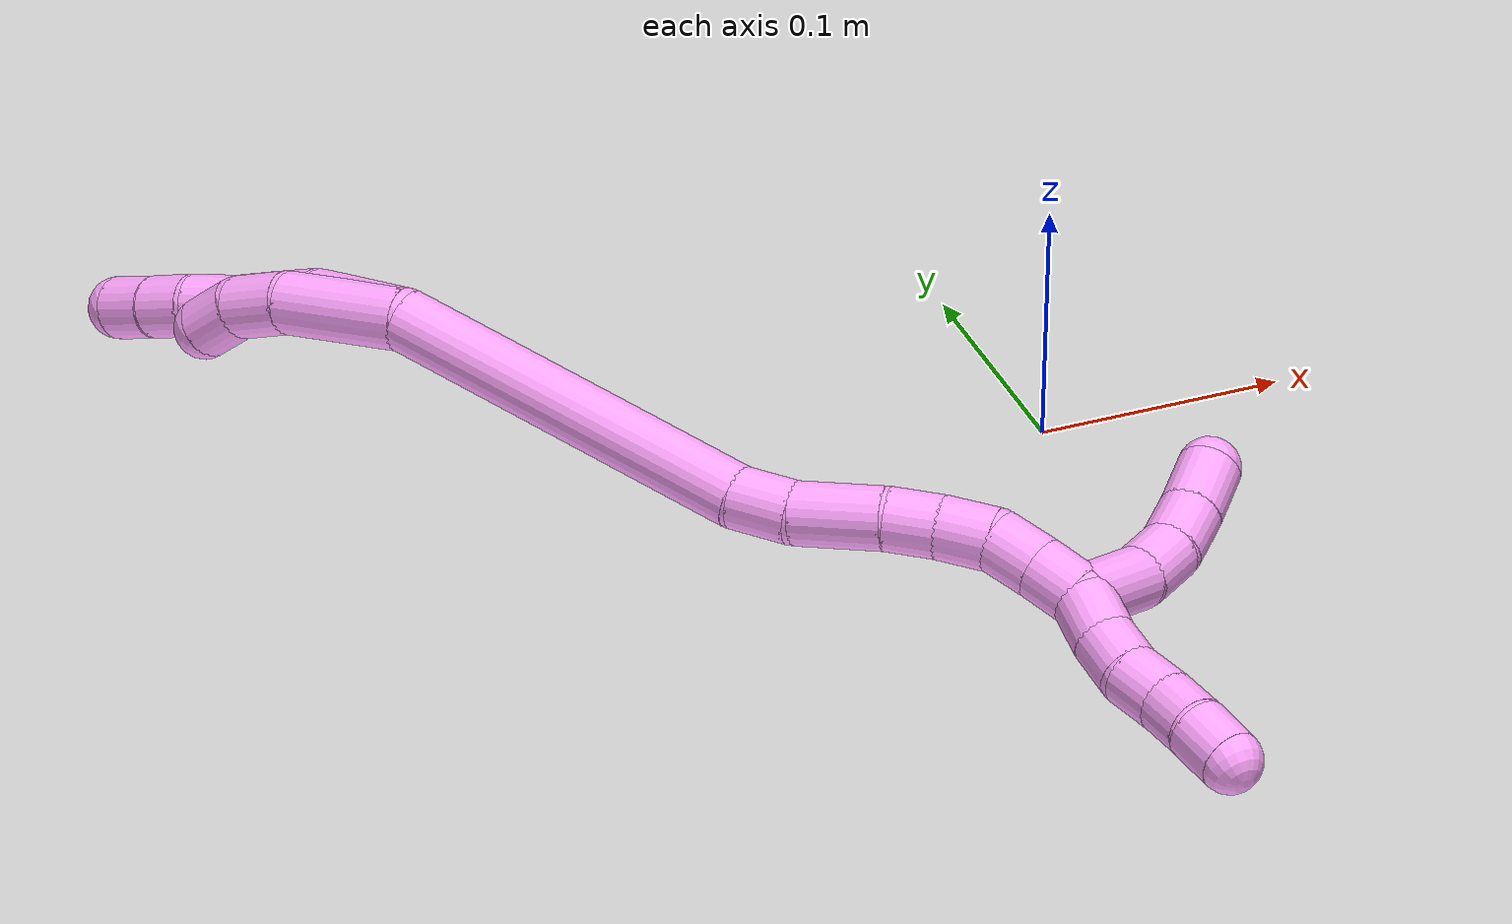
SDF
<sdf version="1.7">
 <world name="default">
  <model name="photoneo_s_sensor">
   <static>1</static>
   <pose>0 0 2 1.57079 1.57079 3.14159</pose>
   <link name="link">
    <inertial><mass>0.1</mass></inertial>
    <sensor name="sensor" type="depth">
     <update_rate>30</update_rate>
     <camera>
      <horizontal_fov>1.22</horizontal_fov>
      <image><width>1920</width><height>1200</height><format>B8G8R8</format></image>
      <clip><near>0.1</near><far>4</far></clip>
      <depth_camera><output>points</output></depth_camera>
     </camera>
     <plugin name="camera_plugin" filename="libgazebo_ros_depth_camera.so">
      <baseline>0.2</baseline>
      <alwaysOn>1</alwaysOn>
      <updateRate>0.0</updateRate>
      <cameraName>camera_ir</cameraName>
      <imageTopicName>/camera/color/image_raw</imageTopicName>
      <cameraInfoTopicName>/camera/color/camera_info</cameraInfoTopicName>
      <depthImageTopicName>/camera/depth/image_raw</depthImageTopicName>
      <depthImageCameraInfoTopicName>/camera/depth/camera_info</depthImageCameraInfoTopicName>
      <pointCloudTopicName>/camera/depth/points</pointCloudTopicName>
      <frameName>fr_optical</frameName>
      <pointCloudCutoff>0.1</pointCloudCutoff>
      <pointCloudCutoffMax>2.0</pointCloudCutoffMax>
      <distortionK1>0</distortionK1>
      <distortionK2>0</distortionK2>
      <distortionK3>0</distortionK3>
      <distortionT1>0</distortionT1>
      <distortionT2>0</distortionT2>
      <CxPrime>0</CxPrime>
      <Cx>0</Cx>
      <Cy>0</Cy>
      <focalLength>0</focalLength>
      <hackBaseline>0</hackBaseline>
     </plugin>
    </sensor>
   </link>
  </model>
  <model name="bin">
   <static>1</static>
   <link name="bottom">
    <collision name="collision-bottom">
     <pose>0 0 -0.01 0 -0 0</pose>
     <geometry><box><size>0.8 0.6 0.02</size></box></geometry>
     <surface>
      <friction><ode><mu>100</mu><mu2>100</mu2></ode></friction>
      <contact><collide_bitmask>65535</collide_bitmask></contact>
     </surface>
    </collision>
   </link>
   <link name="west_wall">
    <collision name="collision-west_wall">
     <pose>-0.41 0 0.1 0 -0 0</pose>
     <geometry><box><size>0.02 0.6 0.2</size></box></geometry>
     <surface>
      <friction><ode><mu>100</mu><mu2>100</mu2></ode></friction>
      <contact><collide_bitmask>65535</collide_bitmask></contact>
     </surface>
    </collision>
   </link>
   <link name="east_wall">
    <collision name="collision-east_wall">
     <pose>0.41 0 0.1 0 -0 0</pose>
     <geometry><box><size>0.02 0.6 0.2</size></box></geometry>
     <surface>
      <friction><ode><mu>100</mu><mu2>100</mu2></ode></friction>
      <contact><collide_bitmask>65535</collide_bitmask></contact>
     </surface>
    </collision>
   </link>
   <link name="south_wall">
    <collision name="collision-south_wall">
     <pose>0 -0.31 0.1 0 -0 0</pose>
     <geometry><box><size>0.8 0.02 0.2</size></box></geometry>
     <surface>
      <friction><ode><mu>100</mu><mu2>100</mu2></ode></friction>
      <contact><collide_bitmask>65535</collide_bitmask></contact>
     </surface>
    </collision>
   </link>
   <link name="north_wall">
    <collision name="collision-north_wall">
     <pose>0 0.31 0.1 0 -0 0</pose>
     <geometry><box><size>0.8 0.02 0.2</size></box></geometry>
     <surface>
      <friction><ode><mu>100</mu><mu2>100</mu2></ode></friction>
      <contact><collide_bitmask>65535</collide_bitmask></contact>
     </surface>
    </collision>
   </link>
  </model>
  <model name="4">
   <static>0</static>
   <link name="4">
    <collision name="collision-cylinder-e_1_2_8">
     <pose>-0.003338 0.015507 0.018531 -0.696774 -0.137272 0.049925</pose>
     <geometry><cylinder><radius>0.0125</radius><length>0.048786</length></cylinder></geometry>
     <surface>
      <friction><ode><mu>1.16</mu><mu2>1.16</mu2><slip1>0</slip1><slip2>0</slip2></ode></friction>
      <contact><ode><kp>1e+06</kp><kd>1</kd><max_vel>0</max_vel><min_depth>0.001</min_depth></ode></contact>
     </surface>
    </collision>
    <visual name="visual-cylinder-e_1_2_8">
     <pose>-0.003338 0.015507 0.018531 -0.696774 -0.137272 0.049925</pose>
     <geometry><cylinder><radius>0.0125</radius><length>0.048786</length></cylinder></geometry>
     <material><ambient>1 0.65098 0.996078 1</ambient></material>
    </visual>
    <collision name="collision-cylinder-e_2_8_9">
     <pose>-0.009121 0.038731 0.042989 -0.915909 -0.246195 0.121816</pose>
     <geometry><cylinder><radius>0.0125</radius><length>0.020065</length></cylinder></geometry>
     <surface>
      <friction><ode><mu>1.16</mu><mu2>1.16</mu2><slip1>0</slip1><slip2>0</slip2></ode></friction>
      <contact><ode><kp>1e+06</kp><kd>1</kd><max_vel>0</max_vel><min_depth>0.001</min_depth></ode></contact>
     </surface>
    </collision>
    <visual name="visual-cylinder-e_2_8_9">
     <pose>-0.009121 0.038731 0.042989 -0.915909 -0.246195 0.121816</pose>
     <geometry><cylinder><radius>0.0125</radius><length>0.020065</length></cylinder></geometry>
     <material><ambient>1 0.65098 0.996078 1</ambient></material>
    </visual>
    <collision name="collision-cylinder-e_3_9_10">
     <pose>-0.01412 0.054478 0.054907 -0.929728 -0.249628 0.125682</pose>
     <geometry><cylinder><radius>0.0125</radius><length>0.020679</length></cylinder></geometry>
     <surface>
      <friction><ode><mu>1.16</mu><mu2>1.16</mu2><slip1>0</slip1><slip2>0</slip2></ode></friction>
      <contact><ode><kp>1e+06</kp><kd>1</kd><max_vel>0</max_vel><min_depth>0.001</min_depth></ode></contact>
     </surface>
    </collision>
    <visual name="visual-cylinder-e_3_9_10">
     <pose>-0.01412 0.054478 0.054907 -0.929728 -0.249628 0.125682</pose>
     <geometry><cylinder><radius>0.0125</radius><length>0.020679</length></cylinder></geometry>
     <material><ambient>1 0.65098 0.996078 1</ambient></material>
    </visual>
    <collision name="collision-cylinder-e_4_10_11">
     <pose>-0.020822 0.069311 0.067201 -0.823672 -0.420535 0.185915</pose>
     <geometry><cylinder><radius>0.0125</radius><length>0.020316</length></cylinder></geometry>
     <surface>
      <friction><ode><mu>1.16</mu><mu2>1.16</mu2><slip1>0</slip1><slip2>0</slip2></ode></friction>
      <contact><ode><kp>1e+06</kp><kd>1</kd><max_vel>0</max_vel><min_depth>0.001</min_depth></ode></contact>
     </surface>
    </collision>
    <visual name="visual-cylinder-e_4_10_11">
     <pose>-0.020822 0.069311 0.067201 -0.823672 -0.420535 0.185915</pose>
     <geometry><cylinder><radius>0.0125</radius><length>0.020316</length></cylinder></geometry>
     <material><ambient>1 0.65098 0.996078 1</ambient></material>
    </visual>
    <collision name="collision-cylinder-e_5_11_12">
     <pose>-0.027425 0.083702 0.079603 -0.893612 -0.247055 0.118835</pose>
     <geometry><cylinder><radius>0.0125</radius><length>0.020084</length></cylinder></geometry>
     <surface>
      <friction><ode><mu>1.16</mu><mu2>1.16</mu2><slip1>0</slip1><slip2>0</slip2></ode></friction>
      <contact><ode><kp>1e+06</kp><kd>1</kd><max_vel>0</max_vel><min_depth>0.001</min_depth></ode></contact>
     </surface>
    </collision>
    <visual name="visual-cylinder-e_5_11_12">
     <pose>-0.027425 0.083702 0.079603 -0.893612 -0.247055 0.118835</pose>
     <geometry><cylinder><radius>0.0125</radius><length>0.020084</length></cylinder></geometry>
     <material><ambient>1 0.65098 0.996078 1</ambient></material>
    </visual>
    <collision name="collision-cylinder-e_6_12_6">
     <pose>-0.031641 0.098808 0.092114 -0.864786 -0.176393 0.081575</pose>
     <geometry><cylinder><radius>0.0125</radius><length>0.02007</length></cylinder></geometry>
     <surface>
      <friction><ode><mu>1.16</mu><mu2>1.16</mu2><slip1>0</slip1><slip2>0</slip2></ode></friction>
      <contact><ode><kp>1e+06</kp><kd>1</kd><max_vel>0</max_vel><min_depth>0.001</min_depth></ode></contact>
     </surface>
    </collision>
    <visual name="visual-cylinder-e_6_12_6">
     <pose>-0.031641 0.098808 0.092114 -0.864786 -0.176393 0.081575</pose>
     <geometry><cylinder><radius>0.0125</radius><length>0.02007</length></cylinder></geometry>
     <material><ambient>1 0.65098 0.996078 1</ambient></material>
    </visual>
    <collision name="collision-cylinder-e_1_2_13">
     <pose>-0.009376 0.017064 0.019167 -0.727431 -0.350296 0.134517</pose>
     <geometry><cylinder><radius>0.0125</radius><length>0.054642</length></cylinder></geometry>
     <surface>
      <friction><ode><mu>1.16</mu><mu2>1.16</mu2><slip1>0</slip1><slip2>0</slip2></ode></friction>
      <contact><ode><kp>1e+06</kp><kd>1</kd><max_vel>0</max_vel><min_depth>0.001</min_depth></ode></contact>
     </surface>
    </collision>
    <visual name="visual-cylinder-e_1_2_13">
     <pose>-0.009376 0.017064 0.019167 -0.727431 -0.350296 0.134517</pose>
     <geometry><cylinder><radius>0.0125</radius><length>0.054642</length></cylinder></geometry>
     <material><ambient>1 0.65098 0.996078 1</ambient></material>
    </visual>
    <collision name="collision-cylinder-e_2_13_14">
     <pose>-0.021733 0.043905 0.045546 -0.935195 -0.240608 0.121932</pose>
     <geometry><cylinder><radius>0.0125</radius><length>0.025021</length></cylinder></geometry>
     <surface>
      <friction><ode><mu>1.16</mu><mu2>1.16</mu2><slip1>0</slip1><slip2>0</slip2></ode></friction>
      <contact><ode><kp>1e+06</kp><kd>1</kd><max_vel>0</max_vel><min_depth>0.001</min_depth></ode></contact>
     </surface>
    </collision>
    <visual name="visual-cylinder-e_2_13_14">
     <pose>-0.021733 0.043905 0.045546 -0.935195 -0.240608 0.121932</pose>
     <geometry><cylinder><radius>0.0125</radius><length>0.025021</length></cylinder></geometry>
     <material><ambient>1 0.65098 0.996078 1</ambient></material>
    </visual>
    <collision name="collision-cylinder-e_3_14_5">
     <pose>-0.02631 0.063257 0.055791 -1.26411 -0.157564 0.11549</pose>
     <geometry><cylinder><radius>0.0125</radius><length>0.020337</length></cylinder></geometry>
     <surface>
      <friction><ode><mu>1.16</mu><mu2>1.16</mu2><slip1>0</slip1><slip2>0</slip2></ode></friction>
      <contact><ode><kp>1e+06</kp><kd>1</kd><max_vel>0</max_vel><min_depth>0.001</min_depth></ode></contact>
     </surface>
    </collision>
    <visual name="visual-cylinder-e_3_14_5">
     <pose>-0.02631 0.063257 0.055791 -1.26411 -0.157564 0.11549</pose>
     <geometry><cylinder><radius>0.0125</radius><length>0.020337</length></cylinder></geometry>
     <material><ambient>1 0.65098 0.996078 1</ambient></material>
    </visual>
    <collision name="collision-cylinder-e_1_2_15">
     <pose>0.031475 -0.025644 -0.066427 2.77317 0.416214 1.69562</pose>
     <geometry><cylinder><radius>0.0125</radius><length>0.155703</length></cylinder></geometry>
     <surface>
      <friction><ode><mu>1.16</mu><mu2>1.16</mu2><slip1>0</slip1><slip2>0</slip2></ode></friction>
      <contact><ode><kp>1e+06</kp><kd>1</kd><max_vel>0</max_vel><min_depth>0.001</min_depth></ode></contact>
     </surface>
    </collision>
    <visual name="visual-cylinder-e_1_2_15">
     <pose>0.031475 -0.025644 -0.066427 2.77317 0.416214 1.69562</pose>
     <geometry><cylinder><radius>0.0125</radius><length>0.155703</length></cylinder></geometry>
     <material><ambient>1 0.65098 0.996078 1</ambient></material>
    </visual>
    <collision name="collision-cylinder-e_2_15_16">
     <pose>0.068669 -0.057012 -0.141601 2.5622 0.500531 1.41774</pose>
     <geometry><cylinder><radius>0.0125</radius><length>0.023829</length></cylinder></geometry>
     <surface>
      <friction><ode><mu>1.16</mu><mu2>1.16</mu2><slip1>0</slip1><slip2>0</slip2></ode></friction>
      <contact><ode><kp>1e+06</kp><kd>1</kd><max_vel>0</max_vel><min_depth>0.001</min_depth></ode></contact>
     </surface>
    </collision>
    <visual name="visual-cylinder-e_2_15_16">
     <pose>0.068669 -0.057012 -0.141601 2.5622 0.500531 1.41774</pose>
     <geometry><cylinder><radius>0.0125</radius><length>0.023829</length></cylinder></geometry>
     <material><ambient>1 0.65098 0.996078 1</ambient></material>
    </visual>
    <collision name="collision-cylinder-e_3_16_17">
     <pose>0.084368 -0.073514 -0.160817 2.34159 0.586358 1.24012</pose>
     <geometry><cylinder><radius>0.0125</radius><length>0.036079</length></cylinder></geometry>
     <surface>
      <friction><ode><mu>1.16</mu><mu2>1.16</mu2><slip1>0</slip1><slip2>0</slip2></ode></friction>
      <contact><ode><kp>1e+06</kp><kd>1</kd><max_vel>0</max_vel><min_depth>0.001</min_depth></ode></contact>
     </surface>
    </collision>
    <visual name="visual-cylinder-e_3_16_17">
     <pose>0.084368 -0.073514 -0.160817 2.34159 0.586358 1.24012</pose>
     <geometry><cylinder><radius>0.0125</radius><length>0.036079</length></cylinder></geometry>
     <material><ambient>1 0.65098 0.996078 1</ambient></material>
    </visual>
    <collision name="collision-cylinder-e_4_17_18">
     <pose>0.101006 -0.089229 -0.177558 2.47488 0.695136 1.61594</pose>
     <geometry><cylinder><radius>0.0125</radius><length>0.020784</length></cylinder></geometry>
     <surface>
      <friction><ode><mu>1.16</mu><mu2>1.16</mu2><slip1>0</slip1><slip2>0</slip2></ode></friction>
      <contact><ode><kp>1e+06</kp><kd>1</kd><max_vel>0</max_vel><min_depth>0.001</min_depth></ode></contact>
     </surface>
    </collision>
    <visual name="visual-cylinder-e_4_17_18">
     <pose>0.101006 -0.089229 -0.177558 2.47488 0.695136 1.61594</pose>
     <geometry><cylinder><radius>0.0125</radius><length>0.020784</length></cylinder></geometry>
     <material><ambient>1 0.65098 0.996078 1</ambient></material>
    </visual>
    <collision name="collision-cylinder-e_5_18_19">
     <pose>0.113365 -0.099577 -0.191582 2.53208 0.542725 1.44838</pose>
     <geometry><cylinder><radius>0.0125</radius><length>0.022083</length></cylinder></geometry>
     <surface>
      <friction><ode><mu>1.16</mu><mu2>1.16</mu2><slip1>0</slip1><slip2>0</slip2></ode></friction>
      <contact><ode><kp>1e+06</kp><kd>1</kd><max_vel>0</max_vel><min_depth>0.001</min_depth></ode></contact>
     </surface>
    </collision>
    <visual name="visual-cylinder-e_5_18_19">
     <pose>0.113365 -0.099577 -0.191582 2.53208 0.542725 1.44838</pose>
     <geometry><cylinder><radius>0.0125</radius><length>0.022083</length></cylinder></geometry>
     <material><ambient>1 0.65098 0.996078 1</ambient></material>
    </visual>
    <collision name="collision-cylinder-e_6_19_20">
     <pose>0.12309 -0.107641 -0.20844 2.85825 0.401142 1.91806</pose>
     <geometry><cylinder><radius>0.0125</radius><length>0.020603</length></cylinder></geometry>
     <surface>
      <friction><ode><mu>1.16</mu><mu2>1.16</mu2><slip1>0</slip1><slip2>0</slip2></ode></friction>
      <contact><ode><kp>1e+06</kp><kd>1</kd><max_vel>0</max_vel><min_depth>0.001</min_depth></ode></contact>
     </surface>
    </collision>
    <visual name="visual-cylinder-e_6_19_20">
     <pose>0.12309 -0.107641 -0.20844 2.85825 0.401142 1.91806</pose>
     <geometry><cylinder><radius>0.0125</radius><length>0.020603</length></cylinder></geometry>
     <material><ambient>1 0.65098 0.996078 1</ambient></material>
    </visual>
    <collision name="collision-cylinder-e_7_20_1">
     <pose>0.129782 -0.113403 -0.227167 2.82888 0.258156 1.37766</pose>
     <geometry><cylinder><radius>0.0125</radius><length>0.020918</length></cylinder></geometry>
     <surface>
      <friction><ode><mu>1.16</mu><mu2>1.16</mu2><slip1>0</slip1><slip2>0</slip2></ode></friction>
      <contact><ode><kp>1e+06</kp><kd>1</kd><max_vel>0</max_vel><min_depth>0.001</min_depth></ode></contact>
     </surface>
    </collision>
    <visual name="visual-cylinder-e_7_20_1">
     <pose>0.129782 -0.113403 -0.227167 2.82888 0.258156 1.37766</pose>
     <geometry><cylinder><radius>0.0125</radius><length>0.020918</length></cylinder></geometry>
     <material><ambient>1 0.65098 0.996078 1</ambient></material>
    </visual>
    <collision name="collision-cylinder-e_1_1_21">
     <pose>0.148984 -0.116865 -0.232551 0.082682 1.319 0.064118</pose>
     <geometry><cylinder><radius>0.0125</radius><length>0.03414</length></cylinder></geometry>
     <surface>
      <friction><ode><mu>1.16</mu><mu2>1.16</mu2><slip1>0</slip1><slip2>0</slip2></ode></friction>
      <contact><ode><kp>1e+06</kp><kd>1</kd><max_vel>0</max_vel><min_depth>0.001</min_depth></ode></contact>
     </surface>
    </collision>
    <visual name="visual-cylinder-e_1_1_21">
     <pose>0.148984 -0.116865 -0.232551 0.082682 1.319 0.064118</pose>
     <geometry><cylinder><radius>0.0125</radius><length>0.03414</length></cylinder></geometry>
     <material><ambient>1 0.65098 0.996078 1</ambient></material>
    </visual>
    <collision name="collision-cylinder-e_2_21_22">
     <pose>0.174766 -0.119546 -0.223662 0.464383 1.05851 0.274872</pose>
     <geometry><cylinder><radius>0.0125</radius><length>0.021224</length></cylinder></geometry>
     <surface>
      <friction><ode><mu>1.16</mu><mu2>1.16</mu2><slip1>0</slip1><slip2>0</slip2></ode></friction>
      <contact><ode><kp>1e+06</kp><kd>1</kd><max_vel>0</max_vel><min_depth>0.001</min_depth></ode></contact>
     </surface>
    </collision>
    <visual name="visual-cylinder-e_2_21_22">
     <pose>0.174766 -0.119546 -0.223662 0.464383 1.05851 0.274872</pose>
     <geometry><cylinder><radius>0.0125</radius><length>0.021224</length></cylinder></geometry>
     <material><ambient>1 0.65098 0.996078 1</ambient></material>
    </visual>
    <collision name="collision-cylinder-e_3_22_23">
     <pose>0.191543 -0.124379 -0.212191 0.351857 0.803167 0.150695</pose>
     <geometry><cylinder><radius>0.0125</radius><length>0.020922</length></cylinder></geometry>
     <surface>
      <friction><ode><mu>1.16</mu><mu2>1.16</mu2><slip1>0</slip1><slip2>0</slip2></ode></friction>
      <contact><ode><kp>1e+06</kp><kd>1</kd><max_vel>0</max_vel><min_depth>0.001</min_depth></ode></contact>
     </surface>
    </collision>
    <visual name="visual-cylinder-e_3_22_23">
     <pose>0.191543 -0.124379 -0.212191 0.351857 0.803167 0.150695</pose>
     <geometry><cylinder><radius>0.0125</radius><length>0.020922</length></cylinder></geometry>
     <material><ambient>1 0.65098 0.996078 1</ambient></material>
    </visual>
    <collision name="collision-cylinder-e_4_23_4">
     <pose>0.206907 -0.130026 -0.197048 0.36101 0.722052 0.137591</pose>
     <geometry><cylinder><radius>0.0125</radius><length>0.023714</length></cylinder></geometry>
     <surface>
      <friction><ode><mu>1.16</mu><mu2>1.16</mu2><slip1>0</slip1><slip2>0</slip2></ode></friction>
      <contact><ode><kp>1e+06</kp><kd>1</kd><max_vel>0</max_vel><min_depth>0.001</min_depth></ode></contact>
     </surface>
    </collision>
    <visual name="visual-cylinder-e_4_23_4">
     <pose>0.206907 -0.130026 -0.197048 0.36101 0.722052 0.137591</pose>
     <geometry><cylinder><radius>0.0125</radius><length>0.023714</length></cylinder></geometry>
     <material><ambient>1 0.65098 0.996078 1</ambient></material>
    </visual>
    <collision name="collision-cylinder-e_1_1_24">
     <pose>0.132275 -0.116319 -0.246786 -3.12213 -0.017768 1.47996</pose>
     <geometry><cylinder><radius>0.0125</radius><length>0.02</length></cylinder></geometry>
     <surface>
      <friction><ode><mu>1.16</mu><mu2>1.16</mu2><slip1>0</slip1><slip2>0</slip2></ode></friction>
      <contact><ode><kp>1e+06</kp><kd>1</kd><max_vel>0</max_vel><min_depth>0.001</min_depth></ode></contact>
     </surface>
    </collision>
    <visual name="visual-cylinder-e_1_1_24">
     <pose>0.132275 -0.116319 -0.246786 -3.12213 -0.017768 1.47996</pose>
     <geometry><cylinder><radius>0.0125</radius><length>0.02</length></cylinder></geometry>
     <material><ambient>1 0.65098 0.996078 1</ambient></material>
    </visual>
    <collision name="collision-cylinder-e_2_24_25">
     <pose>0.131225 -0.118182 -0.26653 2.93365 -0.087341 -0.79318</pose>
     <geometry><cylinder><radius>0.0125</radius><length>0.02</length></cylinder></geometry>
     <surface>
      <friction><ode><mu>1.16</mu><mu2>1.16</mu2><slip1>0</slip1><slip2>0</slip2></ode></friction>
      <contact><ode><kp>1e+06</kp><kd>1</kd><max_vel>0</max_vel><min_depth>0.001</min_depth></ode></contact>
     </surface>
    </collision>
    <visual name="visual-cylinder-e_2_24_25">
     <pose>0.131225 -0.118182 -0.26653 2.93365 -0.087341 -0.79318</pose>
     <geometry><cylinder><radius>0.0125</radius><length>0.02</length></cylinder></geometry>
     <material><ambient>1 0.65098 0.996078 1</ambient></material>
    </visual>
    <collision name="collision-cylinder-e_3_25_26">
     <pose>0.13162 -0.123635 -0.285597 2.7921 0.127036 0.691582</pose>
     <geometry><cylinder><radius>0.0125</radius><length>0.02</length></cylinder></geometry>
     <surface>
      <friction><ode><mu>1.16</mu><mu2>1.16</mu2><slip1>0</slip1><slip2>0</slip2></ode></friction>
      <contact><ode><kp>1e+06</kp><kd>1</kd><max_vel>0</max_vel><min_depth>0.001</min_depth></ode></contact>
     </surface>
    </collision>
    <visual name="visual-cylinder-e_3_25_26">
     <pose>0.13162 -0.123635 -0.285597 2.7921 0.127036 0.691582</pose>
     <geometry><cylinder><radius>0.0125</radius><length>0.02</length></cylinder></geometry>
     <material><ambient>1 0.65098 0.996078 1</ambient></material>
    </visual>
    <collision name="collision-cylinder-e_4_26_27">
     <pose>0.132051 -0.130861 -0.304116 2.74714 -0.083685 -0.413067</pose>
     <geometry><cylinder><radius>0.0125</radius><length>0.02</length></cylinder></geometry>
     <surface>
      <friction><ode><mu>1.16</mu><mu2>1.16</mu2><slip1>0</slip1><slip2>0</slip2></ode></friction>
      <contact><ode><kp>1e+06</kp><kd>1</kd><max_vel>0</max_vel><min_depth>0.001</min_depth></ode></contact>
     </surface>
    </collision>
    <visual name="visual-cylinder-e_4_26_27">
     <pose>0.132051 -0.130861 -0.304116 2.74714 -0.083685 -0.413067</pose>
     <geometry><cylinder><radius>0.0125</radius><length>0.02</length></cylinder></geometry>
     <material><ambient>1 0.65098 0.996078 1</ambient></material>
    </visual>
    <collision name="collision-cylinder-e_5_27_3">
     <pose>0.131538 -0.137415 -0.322932 2.86551 0.032334 0.231728</pose>
     <geometry><cylinder><radius>0.0125</radius><length>0.02</length></cylinder></geometry>
     <surface>
      <friction><ode><mu>1.16</mu><mu2>1.16</mu2><slip1>0</slip1><slip2>0</slip2></ode></friction>
      <contact><ode><kp>1e+06</kp><kd>1</kd><max_vel>0</max_vel><min_depth>0.001</min_depth></ode></contact>
     </surface>
    </collision>
    <visual name="visual-cylinder-e_5_27_3">
     <pose>0.131538 -0.137415 -0.322932 2.86551 0.032334 0.231728</pose>
     <geometry><cylinder><radius>0.0125</radius><length>0.02</length></cylinder></geometry>
     <material><ambient>1 0.65098 0.996078 1</ambient></material>
    </visual>
    <collision name="collision-sphere-3">
     <pose>0.131861 -0.140139 -0.332549 0 -0 0</pose>
     <geometry><sphere><radius>0.0125</radius></sphere></geometry>
     <surface>
      <friction><ode><mu>1.16</mu><mu2>1.16</mu2><slip1>0</slip1><slip2>0</slip2></ode></friction>
      <contact><ode><kp>1e+06</kp><kd>1</kd><max_vel>0</max_vel><min_depth>0.001</min_depth></ode></contact>
     </surface>
    </collision>
    <visual name="visual-sphere-3">
     <pose>0.131861 -0.140139 -0.332549 0 -0 0</pose>
     <geometry><sphere><radius>0.0125</radius></sphere></geometry>
     <material><ambient>1 0.65098 0.996078 1</ambient></material>
    </visual>
    <collision name="collision-sphere-27">
     <pose>0.131215 -0.13469 -0.313316 0 -0 0</pose>
     <geometry><sphere><radius>0.0125</radius></sphere></geometry>
     <surface>
      <friction><ode><mu>1.16</mu><mu2>1.16</mu2><slip1>0</slip1><slip2>0</slip2></ode></friction>
      <contact><ode><kp>1e+06</kp><kd>1</kd><max_vel>0</max_vel><min_depth>0.001</min_depth></ode></contact>
     </surface>
    </collision>
    <visual name="visual-sphere-27">
     <pose>0.131215 -0.13469 -0.313316 0 -0 0</pose>
     <geometry><sphere><radius>0.0125</radius></sphere></geometry>
     <material><ambient>1 0.65098 0.996078 1</ambient></material>
    </visual>
    <collision name="collision-sphere-26">
     <pose>0.132887 -0.127031 -0.294916 0 -0 0</pose>
     <geometry><sphere><radius>0.0125</radius></sphere></geometry>
     <surface>
      <friction><ode><mu>1.16</mu><mu2>1.16</mu2><slip1>0</slip1><slip2>0</slip2></ode></friction>
      <contact><ode><kp>1e+06</kp><kd>1</kd><max_vel>0</max_vel><min_depth>0.001</min_depth></ode></contact>
     </surface>
    </collision>
    <visual name="visual-sphere-26">
     <pose>0.132887 -0.127031 -0.294916 0 -0 0</pose>
     <geometry><sphere><radius>0.0125</radius></sphere></geometry>
     <material><ambient>1 0.65098 0.996078 1</ambient></material>
    </visual>
    <collision name="collision-sphere-25">
     <pose>0.130353 -0.120238 -0.276277 0 -0 0</pose>
     <geometry><sphere><radius>0.0125</radius></sphere></geometry>
     <surface>
      <friction><ode><mu>1.16</mu><mu2>1.16</mu2><slip1>0</slip1><slip2>0</slip2></ode></friction>
      <contact><ode><kp>1e+06</kp><kd>1</kd><max_vel>0</max_vel><min_depth>0.001</min_depth></ode></contact>
     </surface>
    </collision>
    <visual name="visual-sphere-25">
     <pose>0.130353 -0.120238 -0.276277 0 -0 0</pose>
     <geometry><sphere><radius>0.0125</radius></sphere></geometry>
     <material><ambient>1 0.65098 0.996078 1</ambient></material>
    </visual>
    <collision name="collision-sphere-24">
     <pose>0.132097 -0.116125 -0.256782 0 -0 0</pose>
     <geometry><sphere><radius>0.0125</radius></sphere></geometry>
     <surface>
      <friction><ode><mu>1.16</mu><mu2>1.16</mu2><slip1>0</slip1><slip2>0</slip2></ode></friction>
      <contact><ode><kp>1e+06</kp><kd>1</kd><max_vel>0</max_vel><min_depth>0.001</min_depth></ode></contact>
     </surface>
    </collision>
    <visual name="visual-sphere-24">
     <pose>0.132097 -0.116125 -0.256782 0 -0 0</pose>
     <geometry><sphere><radius>0.0125</radius></sphere></geometry>
     <material><ambient>1 0.65098 0.996078 1</ambient></material>
    </visual>
    <collision name="collision-sphere-4">
     <pose>0.214743 -0.133169 -0.188723 0 -0 0</pose>
     <geometry><sphere><radius>0.0125</radius></sphere></geometry>
     <surface>
      <friction><ode><mu>1.16</mu><mu2>1.16</mu2><slip1>0</slip1><slip2>0</slip2></ode></friction>
      <contact><ode><kp>1e+06</kp><kd>1</kd><max_vel>0</max_vel><min_depth>0.001</min_depth></ode></contact>
     </surface>
    </collision>
    <visual name="visual-sphere-4">
     <pose>0.214743 -0.133169 -0.188723 0 -0 0</pose>
     <geometry><sphere><radius>0.0125</radius></sphere></geometry>
     <material><ambient>1 0.65098 0.996078 1</ambient></material>
    </visual>
    <collision name="collision-sphere-23">
     <pose>0.19907 -0.126883 -0.205372 0 -0 0</pose>
     <geometry><sphere><radius>0.0125</radius></sphere></geometry>
     <surface>
      <friction><ode><mu>1.16</mu><mu2>1.16</mu2><slip1>0</slip1><slip2>0</slip2></ode></friction>
      <contact><ode><kp>1e+06</kp><kd>1</kd><max_vel>0</max_vel><min_depth>0.001</min_depth></ode></contact>
     </surface>
    </collision>
    <visual name="visual-sphere-23">
     <pose>0.19907 -0.126883 -0.205372 0 -0 0</pose>
     <geometry><sphere><radius>0.0125</radius></sphere></geometry>
     <material><ambient>1 0.65098 0.996078 1</ambient></material>
    </visual>
    <collision name="collision-sphere-22">
     <pose>0.184016 -0.121876 -0.219011 0 -0 0</pose>
     <geometry><sphere><radius>0.0125</radius></sphere></geometry>
     <surface>
      <friction><ode><mu>1.16</mu><mu2>1.16</mu2><slip1>0</slip1><slip2>0</slip2></ode></friction>
      <contact><ode><kp>1e+06</kp><kd>1</kd><max_vel>0</max_vel><min_depth>0.001</min_depth></ode></contact>
     </surface>
    </collision>
    <visual name="visual-sphere-22">
     <pose>0.184016 -0.121876 -0.219011 0 -0 0</pose>
     <geometry><sphere><radius>0.0125</radius></sphere></geometry>
     <material><ambient>1 0.65098 0.996078 1</ambient></material>
    </visual>
    <collision name="collision-sphere-21">
     <pose>0.165516 -0.117217 -0.228312 0 -0 0</pose>
     <geometry><sphere><radius>0.0125</radius></sphere></geometry>
     <surface>
      <friction><ode><mu>1.16</mu><mu2>1.16</mu2><slip1>0</slip1><slip2>0</slip2></ode></friction>
      <contact><ode><kp>1e+06</kp><kd>1</kd><max_vel>0</max_vel><min_depth>0.001</min_depth></ode></contact>
     </surface>
    </collision>
    <visual name="visual-sphere-21">
     <pose>0.165516 -0.117217 -0.228312 0 -0 0</pose>
     <geometry><sphere><radius>0.0125</radius></sphere></geometry>
     <material><ambient>1 0.65098 0.996078 1</ambient></material>
    </visual>
    <collision name="collision-sphere-1">
     <pose>0.132453 -0.116514 -0.236789 0 -0 0</pose>
     <geometry><sphere><radius>0.0125</radius></sphere></geometry>
     <surface>
      <friction><ode><mu>1.16</mu><mu2>1.16</mu2><slip1>0</slip1><slip2>0</slip2></ode></friction>
      <contact><ode><kp>1e+06</kp><kd>1</kd><max_vel>0</max_vel><min_depth>0.001</min_depth></ode></contact>
     </surface>
    </collision>
    <visual name="visual-sphere-1">
     <pose>0.132453 -0.116514 -0.236789 0 -0 0</pose>
     <geometry><sphere><radius>0.0125</radius></sphere></geometry>
     <material><ambient>1 0.65098 0.996078 1</ambient></material>
    </visual>
    <collision name="collision-sphere-12">
     <pose>-0.02988 0.091291 0.085704 0 -0 0</pose>
     <geometry><sphere><radius>0.0125</radius></sphere></geometry>
     <surface>
      <friction><ode><mu>1.16</mu><mu2>1.16</mu2><slip1>0</slip1><slip2>0</slip2></ode></friction>
      <contact><ode><kp>1e+06</kp><kd>1</kd><max_vel>0</max_vel><min_depth>0.001</min_depth></ode></contact>
     </surface>
    </collision>
    <visual name="visual-sphere-12">
     <pose>-0.02988 0.091291 0.085704 0 -0 0</pose>
     <geometry><sphere><radius>0.0125</radius></sphere></geometry>
     <material><ambient>1 0.65098 0.996078 1</ambient></material>
    </visual>
    <collision name="collision-sphere-11">
     <pose>-0.024969 0.076114 0.073502 0 -0 0</pose>
     <geometry><sphere><radius>0.0125</radius></sphere></geometry>
     <surface>
      <friction><ode><mu>1.16</mu><mu2>1.16</mu2><slip1>0</slip1><slip2>0</slip2></ode></friction>
      <contact><ode><kp>1e+06</kp><kd>1</kd><max_vel>0</max_vel><min_depth>0.001</min_depth></ode></contact>
     </surface>
    </collision>
    <visual name="visual-sphere-11">
     <pose>-0.024969 0.076114 0.073502 0 -0 0</pose>
     <geometry><sphere><radius>0.0125</radius></sphere></geometry>
     <material><ambient>1 0.65098 0.996078 1</ambient></material>
    </visual>
    <collision name="collision-sphere-10">
     <pose>-0.016675 0.062508 0.060899 0 -0 0</pose>
     <geometry><sphere><radius>0.0125</radius></sphere></geometry>
     <surface>
      <friction><ode><mu>1.16</mu><mu2>1.16</mu2><slip1>0</slip1><slip2>0</slip2></ode></friction>
      <contact><ode><kp>1e+06</kp><kd>1</kd><max_vel>0</max_vel><min_depth>0.001</min_depth></ode></contact>
     </surface>
    </collision>
    <visual name="visual-sphere-10">
     <pose>-0.016675 0.062508 0.060899 0 -0 0</pose>
     <geometry><sphere><radius>0.0125</radius></sphere></geometry>
     <material><ambient>1 0.65098 0.996078 1</ambient></material>
    </visual>
    <collision name="collision-sphere-9">
     <pose>-0.011566 0.046448 0.048915 0 -0 0</pose>
     <geometry><sphere><radius>0.0125</radius></sphere></geometry>
     <surface>
      <friction><ode><mu>1.16</mu><mu2>1.16</mu2><slip1>0</slip1><slip2>0</slip2></ode></friction>
      <contact><ode><kp>1e+06</kp><kd>1</kd><max_vel>0</max_vel><min_depth>0.001</min_depth></ode></contact>
     </surface>
    </collision>
    <visual name="visual-sphere-9">
     <pose>-0.011566 0.046448 0.048915 0 -0 0</pose>
     <geometry><sphere><radius>0.0125</radius></sphere></geometry>
     <material><ambient>1 0.65098 0.996078 1</ambient></material>
    </visual>
    <collision name="collision-sphere-2">
     <geometry><sphere><radius>0.0125</radius></sphere></geometry>
     <surface>
      <friction><ode><mu>1.16</mu><mu2>1.16</mu2><slip1>0</slip1><slip2>0</slip2></ode></friction>
      <contact><ode><kp>1e+06</kp><kd>1</kd><max_vel>0</max_vel><min_depth>0.001</min_depth></ode></contact>
     </surface>
    </collision>
    <visual name="visual-sphere-2">
     <geometry><sphere><radius>0.0125</radius></sphere></geometry>
     <material><ambient>1 0.65098 0.996078 1</ambient></material>
    </visual>
    <collision name="collision-sphere-19">
     <pose>0.119067 -0.104989 -0.199334 0 -0 0</pose>
     <geometry><sphere><radius>0.0125</radius></sphere></geometry>
     <surface>
      <friction><ode><mu>1.16</mu><mu2>1.16</mu2><slip1>0</slip1><slip2>0</slip2></ode></friction>
      <contact><ode><kp>1e+06</kp><kd>1</kd><max_vel>0</max_vel><min_depth>0.001</min_depth></ode></contact>
     </surface>
    </collision>
    <visual name="visual-sphere-19">
     <pose>0.119067 -0.104989 -0.199334 0 -0 0</pose>
     <geometry><sphere><radius>0.0125</radius></sphere></geometry>
     <material><ambient>1 0.65098 0.996078 1</ambient></material>
    </visual>
    <collision name="collision-sphere-8">
     <pose>-0.006676 0.031014 0.037063 0 -0 0</pose>
     <geometry><sphere><radius>0.0125</radius></sphere></geometry>
     <surface>
      <friction><ode><mu>1.16</mu><mu2>1.16</mu2><slip1>0</slip1><slip2>0</slip2></ode></friction>
      <contact><ode><kp>1e+06</kp><kd>1</kd><max_vel>0</max_vel><min_depth>0.001</min_depth></ode></contact>
     </surface>
    </collision>
    <visual name="visual-sphere-8">
     <pose>-0.006676 0.031014 0.037063 0 -0 0</pose>
     <geometry><sphere><radius>0.0125</radius></sphere></geometry>
     <material><ambient>1 0.65098 0.996078 1</ambient></material>
    </visual>
    <collision name="collision-sphere-6">
     <pose>-0.033402 0.106326 0.098524 0 -0 0</pose>
     <geometry><sphere><radius>0.0125</radius></sphere></geometry>
     <surface>
      <friction><ode><mu>1.16</mu><mu2>1.16</mu2><slip1>0</slip1><slip2>0</slip2></ode></friction>
      <contact><ode><kp>1e+06</kp><kd>1</kd><max_vel>0</max_vel><min_depth>0.001</min_depth></ode></contact>
     </surface>
    </collision>
    <visual name="visual-sphere-6">
     <pose>-0.033402 0.106326 0.098524 0 -0 0</pose>
     <geometry><sphere><radius>0.0125</radius></sphere></geometry>
     <material><ambient>1 0.65098 0.996078 1</ambient></material>
    </visual>
    <collision name="collision-sphere-13">
     <pose>-0.018752 0.034128 0.038333 0 -0 0</pose>
     <geometry><sphere><radius>0.0125</radius></sphere></geometry>
     <surface>
      <friction><ode><mu>1.16</mu><mu2>1.16</mu2><slip1>0</slip1><slip2>0</slip2></ode></friction>
      <contact><ode><kp>1e+06</kp><kd>1</kd><max_vel>0</max_vel><min_depth>0.001</min_depth></ode></contact>
     </surface>
    </collision>
    <visual name="visual-sphere-13">
     <pose>-0.018752 0.034128 0.038333 0 -0 0</pose>
     <geometry><sphere><radius>0.0125</radius></sphere></geometry>
     <material><ambient>1 0.65098 0.996078 1</ambient></material>
    </visual>
    <collision name="collision-sphere-14">
     <pose>-0.024714 0.053683 0.052759 0 -0 0</pose>
     <geometry><sphere><radius>0.0125</radius></sphere></geometry>
     <surface>
      <friction><ode><mu>1.16</mu><mu2>1.16</mu2><slip1>0</slip1><slip2>0</slip2></ode></friction>
      <contact><ode><kp>1e+06</kp><kd>1</kd><max_vel>0</max_vel><min_depth>0.001</min_depth></ode></contact>
     </surface>
    </collision>
    <visual name="visual-sphere-14">
     <pose>-0.024714 0.053683 0.052759 0 -0 0</pose>
     <geometry><sphere><radius>0.0125</radius></sphere></geometry>
     <material><ambient>1 0.65098 0.996078 1</ambient></material>
    </visual>
    <collision name="collision-sphere-5">
     <pose>-0.027905 0.07283 0.058823 0 -0 0</pose>
     <geometry><sphere><radius>0.0125</radius></sphere></geometry>
     <surface>
      <friction><ode><mu>1.16</mu><mu2>1.16</mu2><slip1>0</slip1><slip2>0</slip2></ode></friction>
      <contact><ode><kp>1e+06</kp><kd>1</kd><max_vel>0</max_vel><min_depth>0.001</min_depth></ode></contact>
     </surface>
    </collision>
    <visual name="visual-sphere-5">
     <pose>-0.027905 0.07283 0.058823 0 -0 0</pose>
     <geometry><sphere><radius>0.0125</radius></sphere></geometry>
     <material><ambient>1 0.65098 0.996078 1</ambient></material>
    </visual>
    <collision name="collision-sphere-15">
     <pose>0.062951 -0.051289 -0.132854 0 -0 0</pose>
     <geometry><sphere><radius>0.0125</radius></sphere></geometry>
     <surface>
      <friction><ode><mu>1.16</mu><mu2>1.16</mu2><slip1>0</slip1><slip2>0</slip2></ode></friction>
      <contact><ode><kp>1e+06</kp><kd>1</kd><max_vel>0</max_vel><min_depth>0.001</min_depth></ode></contact>
     </surface>
    </collision>
    <visual name="visual-sphere-15">
     <pose>0.062951 -0.051289 -0.132854 0 -0 0</pose>
     <geometry><sphere><radius>0.0125</radius></sphere></geometry>
     <material><ambient>1 0.65098 0.996078 1</ambient></material>
    </visual>
    <collision name="collision-sphere-16">
     <pose>0.074386 -0.062735 -0.150348 0 -0 0</pose>
     <geometry><sphere><radius>0.0125</radius></sphere></geometry>
     <surface>
      <friction><ode><mu>1.16</mu><mu2>1.16</mu2><slip1>0</slip1><slip2>0</slip2></ode></friction>
      <contact><ode><kp>1e+06</kp><kd>1</kd><max_vel>0</max_vel><min_depth>0.001</min_depth></ode></contact>
     </surface>
    </collision>
    <visual name="visual-sphere-16">
     <pose>0.074386 -0.062735 -0.150348 0 -0 0</pose>
     <geometry><sphere><radius>0.0125</radius></sphere></geometry>
     <material><ambient>1 0.65098 0.996078 1</ambient></material>
    </visual>
    <collision name="collision-sphere-17">
     <pose>0.09435 -0.084293 -0.171286 0 -0 0</pose>
     <geometry><sphere><radius>0.0125</radius></sphere></geometry>
     <surface>
      <friction><ode><mu>1.16</mu><mu2>1.16</mu2><slip1>0</slip1><slip2>0</slip2></ode></friction>
      <contact><ode><kp>1e+06</kp><kd>1</kd><max_vel>0</max_vel><min_depth>0.001</min_depth></ode></contact>
     </surface>
    </collision>
    <visual name="visual-sphere-17">
     <pose>0.09435 -0.084293 -0.171286 0 -0 0</pose>
     <geometry><sphere><radius>0.0125</radius></sphere></geometry>
     <material><ambient>1 0.65098 0.996078 1</ambient></material>
    </visual>
    <collision name="collision-sphere-18">
     <pose>0.107662 -0.094164 -0.183829 0 -0 0</pose>
     <geometry><sphere><radius>0.0125</radius></sphere></geometry>
     <surface>
      <friction><ode><mu>1.16</mu><mu2>1.16</mu2><slip1>0</slip1><slip2>0</slip2></ode></friction>
      <contact><ode><kp>1e+06</kp><kd>1</kd><max_vel>0</max_vel><min_depth>0.001</min_depth></ode></contact>
     </surface>
    </collision>
    <visual name="visual-sphere-18">
     <pose>0.107662 -0.094164 -0.183829 0 -0 0</pose>
     <geometry><sphere><radius>0.0125</radius></sphere></geometry>
     <material><ambient>1 0.65098 0.996078 1</ambient></material>
    </visual>
    <collision name="collision-sphere-20">
     <pose>0.127112 -0.110292 -0.217546 0 -0 0</pose>
     <geometry><sphere><radius>0.0125</radius></sphere></geometry>
     <surface>
      <friction><ode><mu>1.16</mu><mu2>1.16</mu2><slip1>0</slip1><slip2>0</slip2></ode></friction>
      <contact><ode><kp>1e+06</kp><kd>1</kd><max_vel>0</max_vel><min_depth>0.001</min_depth></ode></contact>
     </surface>
    </collision>
    <visual name="visual-sphere-20">
     <pose>0.127112 -0.110292 -0.217546 0 -0 0</pose>
     <geometry><sphere><radius>0.0125</radius></sphere></geometry>
     <material><ambient>1 0.65098 0.996078 1</ambient></material>
    </visual>
    <inertial>
     <pose>0.061974 -0.040451 -0.101024 0 -0 0</pose>
     <mass>0.75</mass>
     <inertia>
      <ixx>0.000332</ixx>
      <ixy>0</ixy>
      <ixz>0</ixz>
      <iyy>0.000429</iyy>
      <iyz>0</iyz>
      <izz>-5.6e-05</izz>
     </inertia>
    </inertial>
   </link>
   <pose>-0.233507 0.084161 0.056274 -1.17476 0.35412 0.230244</pose>
  </model>
 </world>
</sdf>
